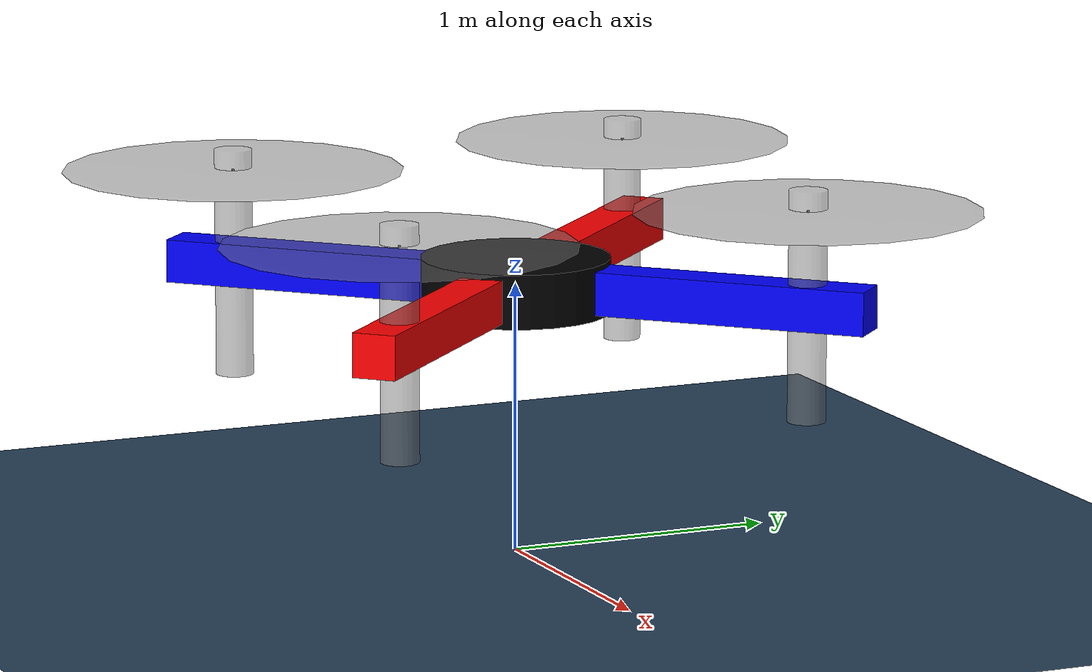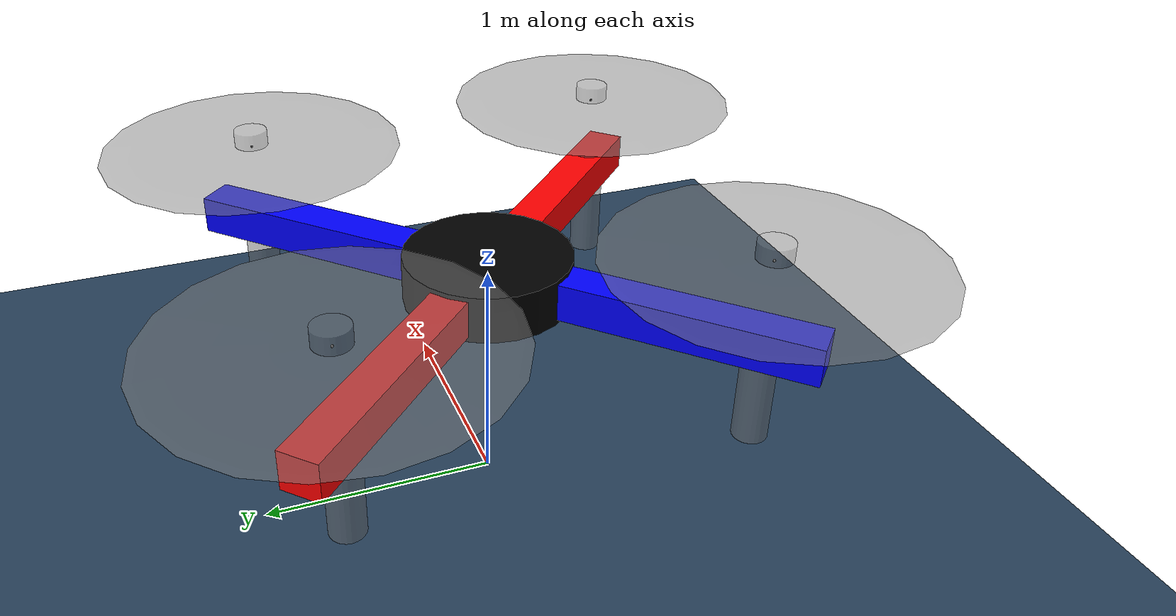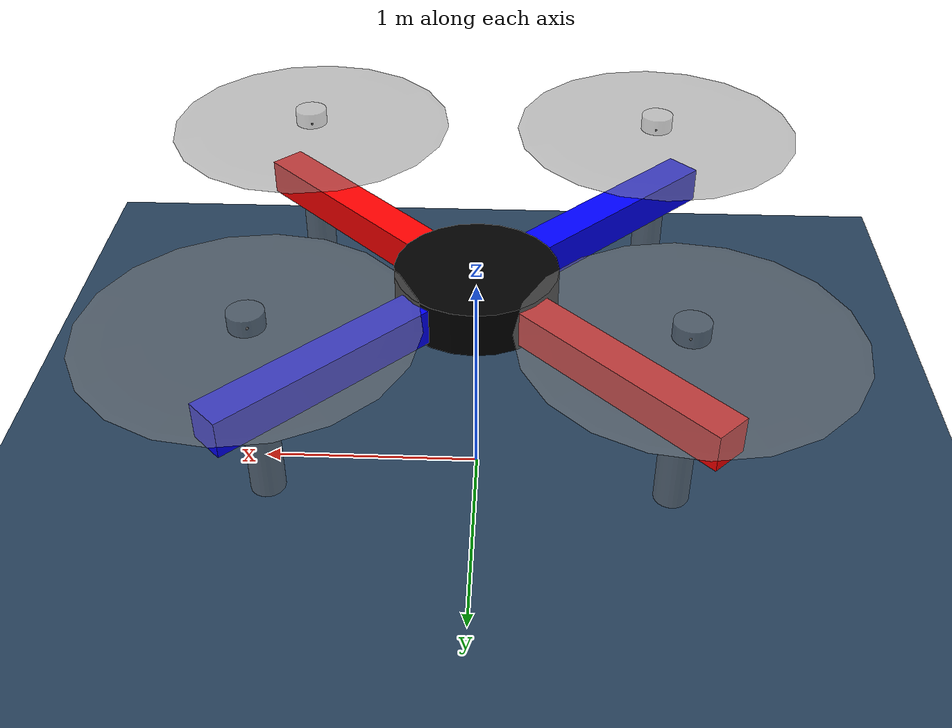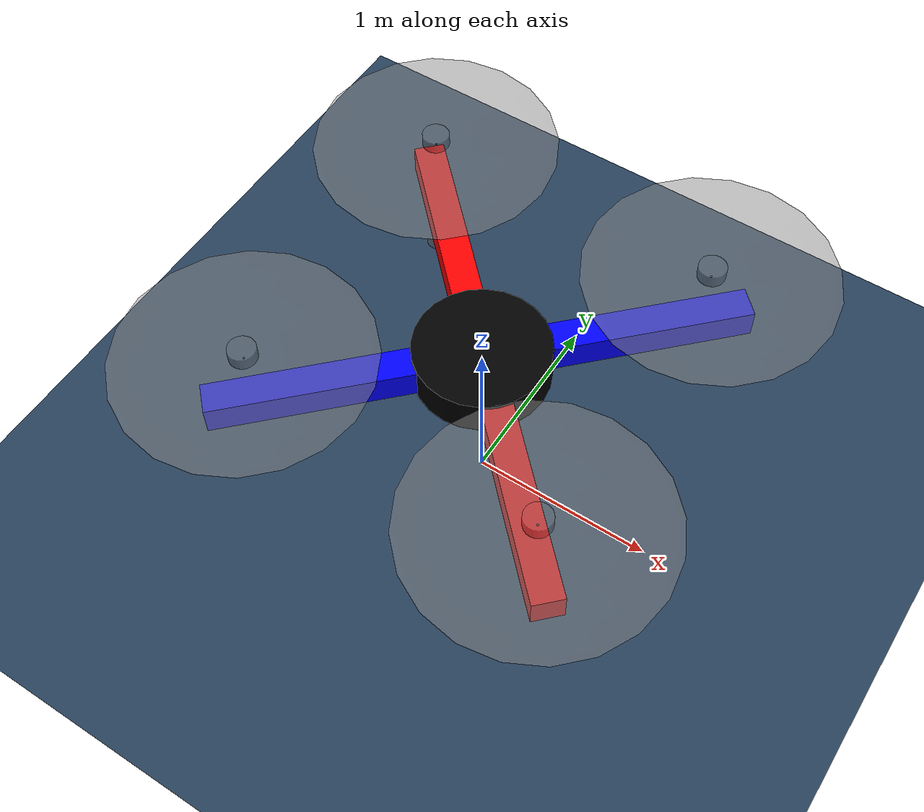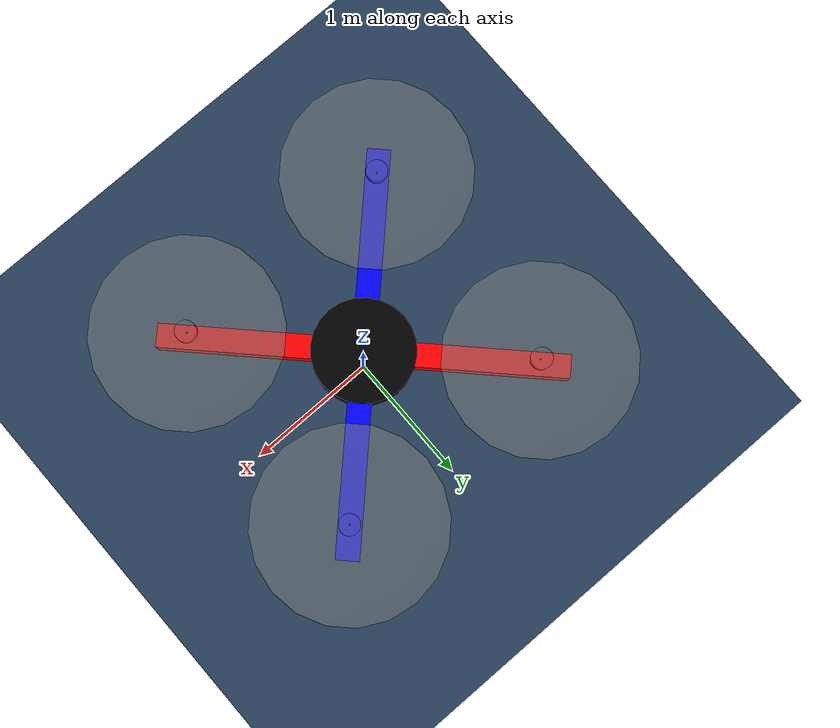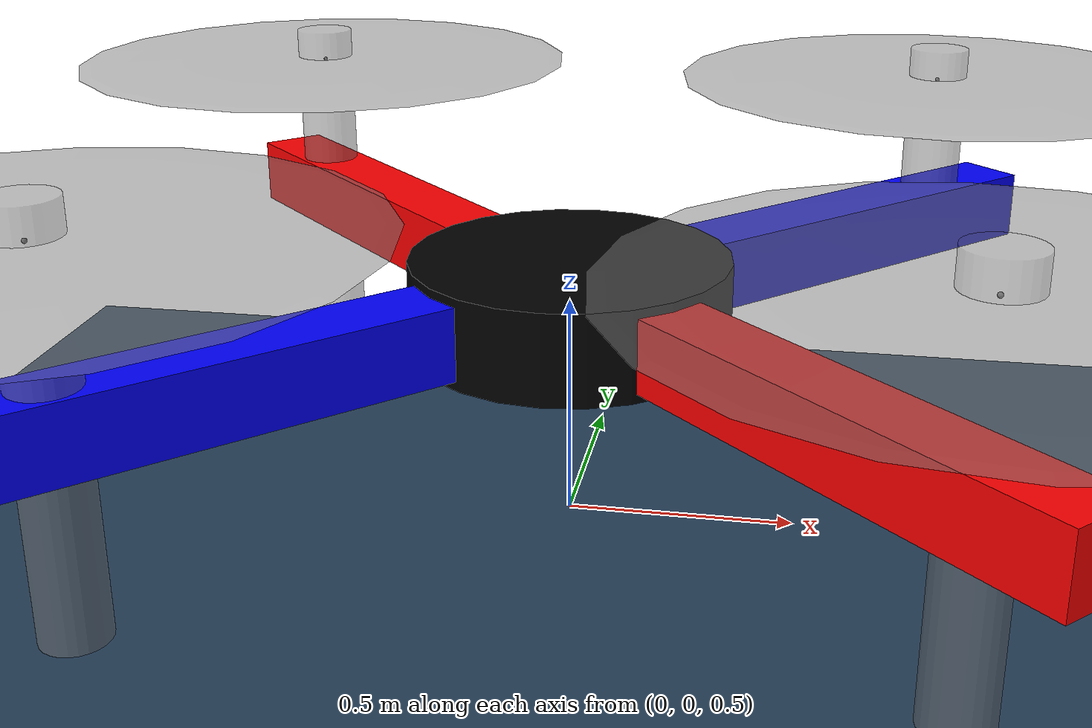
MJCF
<mujoco model="Quadcopter">
    <include file="f450_low_poly.xml"/>
    <option	timestep="0.001" gravity="0 0 -9.81" />

    <asset>
        <texture name="grid" type="2d" builtin="checker" width="512" height="512" rgb1=".1 .2 .3" rgb2=".2 .3 .4"/>
        <texture type="skybox" builtin="gradient" rgb1=".035 .206 .235" rgb2="1 1 1" width="32" height="512"/>
        <material name="grid" texture="grid" texrepeat="1 1" texuniform="true" reflectance=".2"/>
    </asset>

    <worldbody>
        <geom name="floor" pos="0 0 0" size="0 0 .05" type="plane" material="grid" condim="3"/>
        <light pos="0 0 1.5" dir="0 0 -1" directional="true"/>
    </worldbody>
</mujoco>

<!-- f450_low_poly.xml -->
<mujoco model="quadrotor0">
	<compiler inertiafromgeom="true" coordinate="local"/>
	<option	timestep="0.005" gravity="0 0 -9.81" density="1" viscosity="1e-5" />

	<worldbody>
		<body name="quadrotor" pos="0 0 1">
            <geom name="core" size="0.35 0.1" pos="0 0 0.0" type="cylinder" rgba="0 0 0 1" mass=".325"/>

            <geom name="arm1" type="box" size="0.8 0.08 0.08" pos="0.397 -.397 0" euler="0 0 -45"  rgba="1 0 0 1" mass="0"/>
            <geom name="arm2" type="box" size="0.8 0.08 0.08" pos="-0.397 -.397 0" euler="0 0 45"  rgba="0 0 1 1" mass="0"/>
            <geom name="arm3" type="box" size="0.8 0.08 0.08" pos="-0.397 0.397 0" euler="0 0 -45" rgba="1 0 0 1" mass="0"/>
            <geom name="arm4" type="box" size="0.8 0.08 0.08" pos="0.397 0.397 0" euler="0 0 45"   rgba="0 0 1 1" mass="0"/>

            <geom name="rotor1" type="ellipsoid" size="0.635 0.635 .01" pos="-.79450535 -.7945588 0.3465" rgba="0.5 0.5 0.5 0.5" mass=".25"/>
            <geom name="rotor2" type="ellipsoid" size="0.635 0.635 .01" pos="-.79450535 .7945588 0.3465" rgba="0.5 0.5 0.5 0.5" mass=".25"/>
            <geom name="rotor3" type="ellipsoid" size="0.635 0.635 .01" pos=".79450535 .7945588 0.3465" rgba="0.5 0.5 0.5 0.5" mass=".25"/>
            <geom name="rotor4" type="ellipsoid" size="0.635 0.635 .01" pos=".79450535 -.7945588 0.3465" rgba="0.5 0.5 0.5 0.5" mass=".25"/>

            <geom type="cylinder" size="0.07 0.425" pos="-.79450535 -.7945588 0" rgba="0.5 0.5 0.5 0.5" euler="0 0 0" mass="0"/>
            <geom type="cylinder" size="0.07 0.425" pos="-.79450535 .7945588 0" rgba="0.5 0.5 0.5 0.5"  euler="0 0 0" mass="0"/>
            <geom type="cylinder" size="0.07 0.425" pos=" .79450535 .7945588 0" rgba="0.5 0.5 0.5 0.5"  euler="0 0 0" mass="0"/>
            <geom type="cylinder" size="0.07 0.425" pos=" .79450535 -.7945588 0" rgba="0.5 0.5 0.5 0.5" euler="0 0 0" mass="0"/>

            <joint name="root"  type="free" damping="0" armature="0" pos="0 0 0" />

            <site name="thrust1" pos="-.79450535 -.7945588 0.3465"/>
            <site name="thrust2" pos="-.79450535 .7945588 0.3465"/>
            <site name="thrust3" pos=".79450535 .7945588 0.3465"/>
            <site name="thrust4" pos=".79450535 -.7945588 0.3465"/>
		</body>
	</worldbody>
    <actuator>
        <motor ctrlrange="0 100" name="motor1" site="thrust1" gear="0 0 1 0 0 -0.3465"/>
        <motor ctrlrange="0 100" name="motor2" site="thrust2" gear="0 0 1 0 0  0.3465"/>
        <motor ctrlrange="0 100" name="motor3" site="thrust3" gear="0 0 1 0 0 -0.3465"/>
        <motor ctrlrange="0 100" name="motor4" site="thrust4" gear="0 0 1 0 0  0.3465"/>
	</actuator>
</mujoco>
